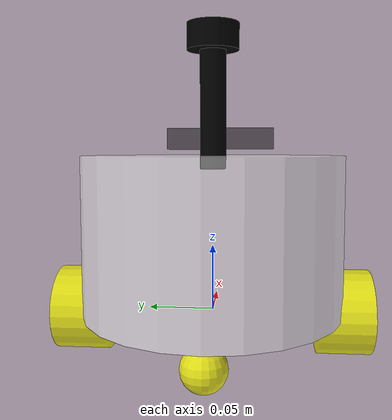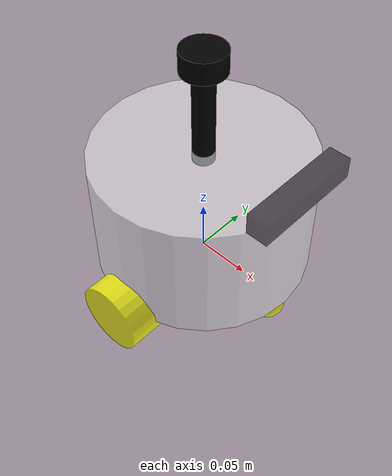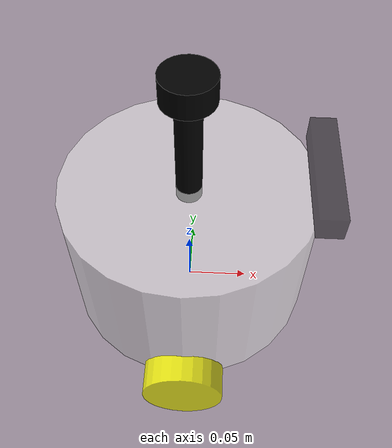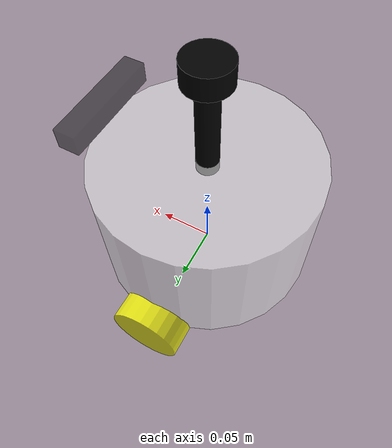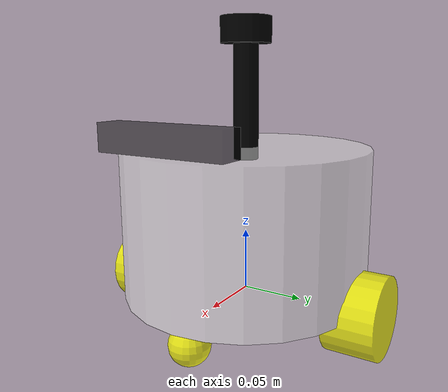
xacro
<?xml version="1.0"?>
<robot xmlns:xacro = "http://www.ros.org/wiki/xacro" name = "lowindowbot">

<xacro:include filename = "$(find lowindowbot_description)/urdf/lowindowbot/base.urdf.xacro"/>

<xacro:include filename = "$(find lowindowbot_description)/urdf/lowindowbot/sensor/imu.urdf.xacro"/>
<xacro:include filename = "$(find lowindowbot_description)/urdf/lowindowbot/sensor/camera.urdf.xacro"/>
<xacro:include filename = "$(find lowindowbot_description)/urdf/lowindowbot/sensor/laser.urdf.xacro"/>

<xacro:include filename = "$(find lowindowbot_description)/urdf/lowindowbot/actuator/wheel.urdf.xacro"/>
<xacro:include filename = "$(find lowindowbot_description)/urdf/lowindowbot/actuator/caster.urdf.xacro"/>

<!--xacro:include filename = "$(find lowindowbot_description)/urdf/lowindowbot/plugins/gazebo_control_plugin.xacro"/-->
<xacro:include filename = "$(find lowindowbot_description)/urdf/lowindowbot/plugins/gazebo_sensor_plugin.xacro"/>
<xacro:include filename = "$(find lowindowbot_description)/urdf/lowindowbot/lowindowbot.ros2_control.xacro"/>
<xacro:base_xacro length= "0.12" radius="0.10"/>
<xacro:imu_xacro xyz="0.0 0.0 0.02"/>
<xacro:camera_xacro xyz="0.10 0.0 0.075"/>
<xacro:laser_xacro xyz="0.0 0.0 0.10"/>
<xacro:wheel_xacro wheel_name="left_wheel" xyz = "0 0.10 -0.06"/>
<xacro:wheel_xacro wheel_name="right_wheel" xyz = "0 -0.10 -0.06"/>
<xacro:caster_xacro caster_name= "front_caster" xyz = "0.08 0.0 -0.076"/>
<xacro:caster_xacro caster_name= "back_caster" xyz = "-0.08 0.0 -0.076"/>
<!--xacro:gazebo_control_plugin /-->
<xacro:gazebo_sensor_plugin />
<xacro:lowindowbot_ros2_control />
</robot>

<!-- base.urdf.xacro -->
<robot xmlns:xacro = "http://www.ros.org/wiki/xacro">
    <xacro:include filename = "$(find lowindowbot_description)/urdf/lowindowbot/common_inertial.xacro"/>
    <xacro:macro name = "base_xacro" params = "length radius">
        <!-- 机器人的身体部分 -->
        <link name="base_link">
            <!-- 部件的外观 -->
            <visual>
                <!-- 沿着自己集合中心的偏移和旋转量 -->
                <origin xyz="0.0 0.0 0.0" rpy="0.0 0.0 0.0"/>
                <!-- 几何形状 -->
                <geometry>
                    <!-- 圆柱体 -->
                    <cylinder radius="${radius}" length="${length}"/>
                </geometry>
                <!-- 材质颜色 -->
                <material name = "white">
                    <color rgba="1.0 1.0 1.0 0.5"/>
                </material>
            </visual>
            <collision>
                <!-- 沿着自己集合中心的偏移和旋转量 -->
                <origin xyz="0.0 0.0 0.0" rpy="0.0 0.0 0.0"/>
                <!-- 几何形状 -->
                <geometry>
                    <!-- 圆柱体 -->
                    <cylinder radius="${radius}" length="${length}"/>
                </geometry>
                <!-- 材质颜色 -->
                <material name = "white">
                    <color rgba="1.0 1.0 1.0 0.5"/>
                </material>
            </collision>
            <xacro:cylinder_inertia m="1.0" r="${radius}" h = "${length}"/>
        </link>

        <link name="base_footprint"/>
        <joint name="base_footprint_joint" type="fixed">
        <parent link="base_footprint"/>
        <child link="base_link"/>
        <origin xyz="0 0 0.06" rpy="0 0 0"/>
        </joint>

    </xacro:macro>

</robot>

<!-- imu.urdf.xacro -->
<robot xmlns:xacro = "http://www.ros.org/wiki/xacro">
    <xacro:include filename = "$(find lowindowbot_description)/urdf/lowindowbot/common_inertial.xacro"/>
    <xacro:macro name = "imu_xacro" params = "xyz">
       <!-- 机器人的IMU部件 惯性测量传感器 -->
        <link name="imu_link">
            <!-- 部件的外观 -->
            <visual>
                <!-- 沿着自己集合中心的偏移和旋转量 -->
                <origin xyz="0.0 0.0 0.0" rpy="0.0 0.0 0.0"/>
                <!-- 几何形状 -->
                <geometry>
                    <!-- 圆柱体 -->
                    <box size="0.02 0.02 0.02"/>
                </geometry>
                <!-- 材质颜色 -->
                <material name = "black">
                    <color rgba="0.0 0.0 0.0 0.5"/>
                </material>
            </visual>
            <collision>
                 <!-- 沿着自己集合中心的偏移和旋转量 -->
                <origin xyz="0.0 0.0 0.0" rpy="0.0 0.0 0.0"/>
                <!-- 几何形状 -->
                <geometry>
                    <!-- 圆柱体 -->
                    <box size="0.02 0.02 0.02"/>
                </geometry>
                <!-- 材质颜色 -->
                <material name = "black">
                    <color rgba="0.0 0.0 0.0 0.5"/>
                </material>
            </collision>
             <xacro:box_inertia m="0.05" w="0.02" h="0.02" d="0.02"/>
        </link>
          <!-- 机器人的关节 用于组合部件 -->
        <joint name="imu_joint" type="fixed">
            <parent link="base_link"/>
            <child link="imu_link"/>
            <origin xyz="${xyz}" rpy="0.0 0.0 0.0"/>
        </joint>
    </xacro:macro>

</robot>

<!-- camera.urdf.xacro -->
<robot xmlns:xacro = "http://www.ros.org/wiki/xacro">
    <xacro:include filename = "$(find lowindowbot_description)/urdf/lowindowbot/common_inertial.xacro"/>
    <xacro:macro name = "camera_xacro" params = "xyz">
       <!-- 摄像头传感器 -->
        <link name="camera_link">
            <!-- 部件的外观 -->
            <visual>
                <!-- 沿着自己集合中心的偏移和旋转量 -->
                <origin xyz="0.0 0.0 0.0" rpy="0.0 0.0 0.0"/>
                <!-- 几何形状 -->
                <geometry>
                    <!-- 圆柱体 -->
                    <box size="0.02 0.10 0.02"/>
                </geometry>
                <!-- 材质颜色 -->
                <material name = "black">
                    <color rgba="0.0 0.0 0.0 0.5"/>
                </material>
            </visual>
            <collision>
                 <!-- 沿着自己集合中心的偏移和旋转量 -->
                <origin xyz="0.0 0.0 0.0" rpy="0.0 0.0 0.0"/>
                <!-- 几何形状 -->
                <geometry>
                    <!-- 圆柱体 -->
                    <box size="0.02 0.10 0.02"/>
                </geometry>
                <!-- 材质颜色 -->
                <material name = "black">
                    <color rgba="0.0 0.0 0.0 0.5"/>
                </material>
            </collision>
            <xacro:box_inertia m="0.1" w="0.02" h="0.10" d="0.02"/>
        </link>
        <link name="camera_optical_link" type="fixed"> </link>
          <!-- 机器人的关节 用于组合部件 -->
        <joint name="camera_joint" type="fixed">
            <parent link="base_link"/>
            <child link="camera_link"/>
            <origin xyz="${xyz}" rpy="0.0 0.0 0.0"/>
        </joint>
        <joint name="camera_optical_joint" type="fixed">
            <parent link="camera_link"/>
            <child link="camera_optical_link"/>
            <origin xyz="0 0 0 " rpy="${-pi/2} 0.0 ${-pi/2}"/>
        </joint>
    </xacro:macro>

</robot>

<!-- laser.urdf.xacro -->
<robot xmlns:xacro = "http://www.ros.org/wiki/xacro">
    <xacro:include filename = "$(find lowindowbot_description)/urdf/lowindowbot/common_inertial.xacro"/>
    <xacro:macro name = "laser_xacro" params = "xyz">
       <!-- 雷达传感器支撑杆 -->
        <link name="laser_cylinder_link">
            <!-- 部件的外观 -->
            <visual>
                <!-- 沿着自己集合中心的偏移和旋转量 -->
                <origin xyz="0.0 0.0 0.0" rpy="0.0 0.0 0.0"/>
                <!-- 几何形状 -->
                <geometry>
                    <!-- 圆柱体 -->
                    <cylinder radius="0.01" length="0.10"/>
                </geometry>
                <!-- 材质颜色 -->
                <material name = "black">
                    <color rgba="0.0 0.0 0.0 1.0"/>
                </material>
            </visual>
            <collision>
                <!-- 沿着自己集合中心的偏移和旋转量 -->
                <origin xyz="0.0 0.0 0.0" rpy="0.0 0.0 0.0"/>
                <!-- 几何形状 -->
                <geometry>
                    <!-- 圆柱体 -->
                    <cylinder radius="0.01" length="0.10"/>
                </geometry>
                <!-- 材质颜色 -->
                <material name = "black">
                    <color rgba="0.0 0.0 0.0 1.0"/>
                </material>
            </collision>
            <xacro:cylinder_inertia m="0.05" r="0.01" h = "0.10"/>
        </link>
        <!-- 雷达传感器-->
        <link name="laser_link">
            <!-- 部件的外观 -->
            <visual>
                <!-- 沿着自己集合中心的偏移和旋转量 -->
                <origin xyz="0.0 0.0 0.0" rpy="0.0 0.0 0.0"/>
                <!-- 几何形状 -->
                <geometry>
                    <!-- 圆柱体 -->
                    <cylinder radius="0.02" length="0.02"/>
                </geometry>
                <!-- 材质颜色 -->
                <material name = "black">
                    <color rgba="0.0 0.0 0.0 1.0"/>
                </material>
            </visual>
            <collision>
                 <!-- 沿着自己集合中心的偏移和旋转量 -->
                <origin xyz="0.0 0.0 0.0" rpy="0.0 0.0 0.0"/>
                <!-- 几何形状 -->
                <geometry>
                    <!-- 圆柱体 -->
                    <cylinder radius="0.02" length="0.02"/>
                </geometry>
                <!-- 材质颜色 -->
                <material name = "black">
                    <color rgba="0.0 0.0 0.0 1.0"/>
                </material>
            </collision>
             <xacro:cylinder_inertia m="0.10" r="0.02" h = "0.02"/>
        </link>
        <!-- 机器人的关节 用于组合部件 -->

        <joint name="laser_cylinder_joint" type="fixed">
            <parent link="laser_cylinder_link"/>
            <child link="laser_link"/>
            <origin xyz="0.0 0.0 0.05" rpy="0.0 0.0 0.0"/>
        </joint>

        <joint name="laser_joint" type="fixed">
            <parent link="base_link"/>
            <child link="laser_cylinder_link"/>
            <origin xyz="${xyz}" rpy="0.0 0.0 0.0"/>
        </joint>
        <gazebo reference="laser_cylinder_link">
            <material>Gazebo/Black</material>
        </gazebo>
        <gazebo reference="laser_link">
            <material>Gazebo/Black</material>
        </gazebo>
    </xacro:macro>

</robot>

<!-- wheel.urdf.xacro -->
<robot xmlns:xacro = "http://www.ros.org/wiki/xacro">
    <xacro:include filename = "$(find lowindowbot_description)/urdf/lowindowbot/common_inertial.xacro"/>
    <xacro:macro name = "wheel_xacro" params = "wheel_name xyz">
       <!-- 机器人的IMU部件 惯性测量传感器 -->
        <link name="${wheel_name}_link">
            <!-- 部件的外观 -->
            <visual>
                <!-- 沿着自己集合中心的偏移和旋转量 -->
                <origin xyz="0.0 0.0 0.0" rpy="1.57079 0.0 0.0"/>
                <!-- 几何形状 -->
                <geometry>
                    <!-- 圆柱体 -->
                   <cylinder radius="0.032" length="0.04"/>
                </geometry>
                <!-- 材质颜色 -->
                <material name = "yellow">
                    <color rgba="1.0 1.0 0.0 0.8"/>
                </material>
            </visual>
            <collision>
                <!-- 沿着自己集合中心的偏移和旋转量 -->
                <origin xyz="0.0 0.0 0.0" rpy="1.57079 0.0 0.0"/>
                <!-- 几何形状 -->
                <geometry>
                    <!-- 圆柱体 -->
                   <cylinder radius="0.032" length="0.04"/>
                </geometry>
                <!-- 材质颜色 -->
                <material name = "yellow">
                    <color rgba="1.0 1.0 0.0 0.8"/>
                </material>
            </collision>
            <xacro:cylinder_inertia m="0.05" r="0.032" h = "0.04"/>
        </link>
          <!-- 机器人的关节 用于组合部件 -->
        <joint name="${wheel_name}_joint" type="continuous">
            <parent link="base_link"/>
            <child link="${wheel_name}_link"/>
            <origin xyz="${xyz}" rpy="0.0 0.0 0.0"/>
            <axis xyz="0 1 0"/>
        </joint>
        <gazebo reference="${wheel_name}_link">
            <mu1 value="20.0"/>
            <mu2 value="20.0"/>
            <kp value="1000000000.0"/>
            <kd value="1.0"/>
        </gazebo>

    </xacro:macro>

</robot>

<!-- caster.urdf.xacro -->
<robot xmlns:xacro = "http://www.ros.org/wiki/xacro">
    <xacro:include filename = "$(find lowindowbot_description)/urdf/lowindowbot/common_inertial.xacro"/>
    <xacro:macro name = "caster_xacro" params = "caster_name xyz">
       <!-- 机器人的IMU部件 惯性测量传感器 -->
        <link name="${caster_name}_link">
            <!-- 部件的外观 -->
            <visual>
                <!-- 沿着自己集合中心的偏移和旋转量 -->
                <origin xyz="0.0 0.0 0.0" rpy="0.0 0.0 0.0"/>
                <!-- 几何形状 -->
                <geometry>
                    <!-- 圆柱体 -->
                   <sphere radius="0.016"/>
                </geometry>
                <!-- 材质颜色 -->
                <material name = "yellow">
                    <color rgba="1.0 1.0 0.0 0.8"/>
                </material>
            </visual>
            <collision>
                 <!-- 沿着自己集合中心的偏移和旋转量 -->
                <origin xyz="0.0 0.0 0.0" rpy="0.0 0.0 0.0"/>
                <!-- 几何形状 -->
                <geometry>
                    <!-- 圆柱体 -->
                   <sphere radius="0.016"/>
                </geometry>
                <!-- 材质颜色 -->
                <material name = "yellow">
                    <color rgba="1.0 1.0 0.0 0.8"/>
                </material>
            </collision>
            <xacro:sphere_inertia m="0.05" r="0.016"/>
        </link>
          <!-- 机器人的关节 用于组合部件 -->
        <joint name="${caster_name}_joint" type="fixed">
            <parent link="base_link"/>
            <child link="${caster_name}_link"/>
            <origin xyz="${xyz}" rpy="0.0 0.0 0.0"/>
        </joint>

        <gazebo reference="${caster_name}_link">
            <mu1 value="0.0"/>
            <mu2 value="0.0"/>
            <kp value="1000000000.0"/>
            <kd value="1.0"/>
        </gazebo>
    </xacro:macro>

</robot>
